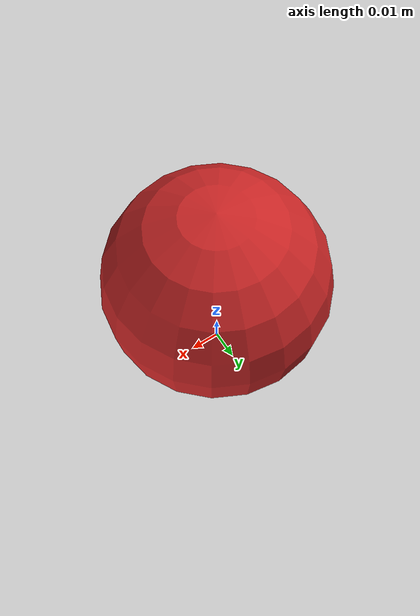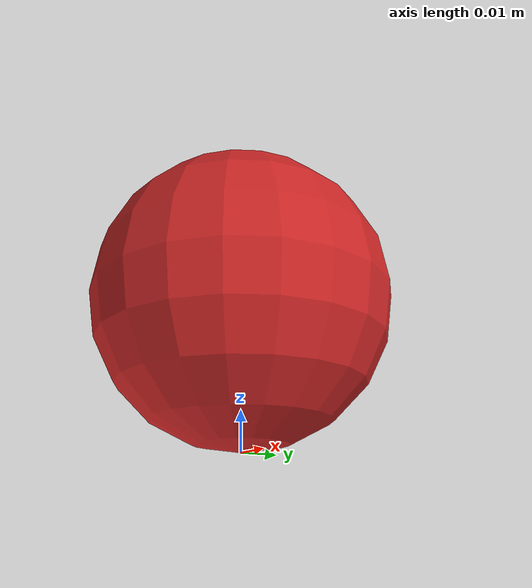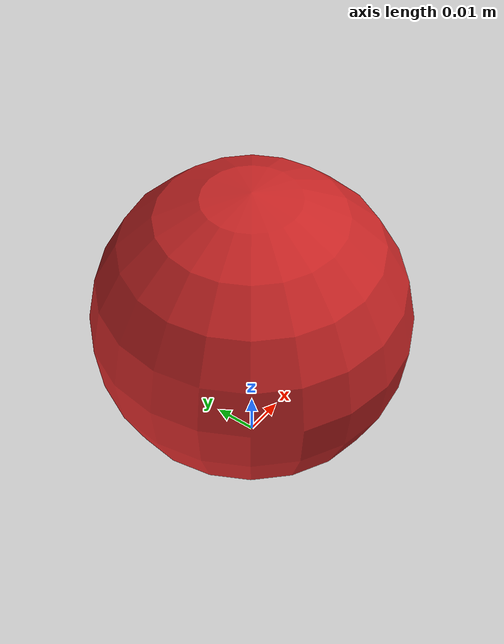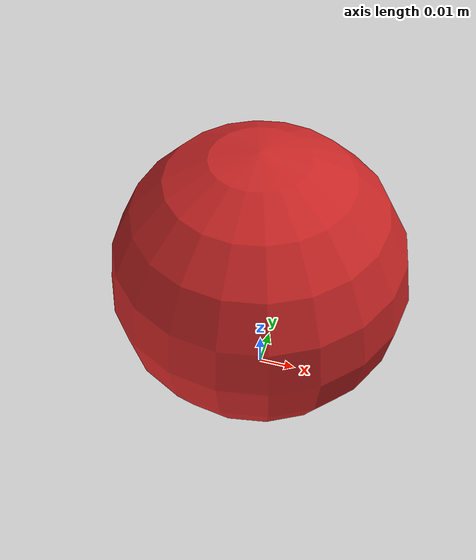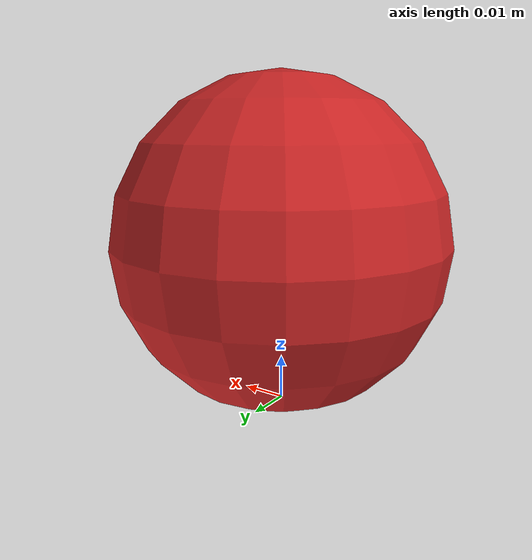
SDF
<?xml version='1.0'?>
<sdf version='1.6'>
  <model name='cricket_ball'>
    <link name='link'>
      <pose frame=''>0 0 0.0375 0 -0 0</pose>
      <inertial>
        <mass>0.1467</mass>
        <inertia>
          <ixx>8.252e-05</ixx>
          <ixy>0</ixy>
          <ixz>0</ixz>
          <iyy>8.252e-05</iyy>
          <iyz>0</iyz>
          <izz>8.252e-05</izz>
        </inertia>
        <pose frame=''>0 0 0 0 -0 0</pose>
      </inertial>
      <self_collide>0</self_collide>
      <kinematic>0</kinematic>
      <velocity_decay>
        <linear>0</linear>
        <angular>0.005</angular>
      </velocity_decay>
      <gravity>1</gravity>
      <visual name='visual'>
        <geometry>
          <sphere>
            <radius>0.0375</radius>
          </sphere>
        </geometry>
        <material>
          <script>
            <uri>file://media/materials/scripts/gazebo.material</uri>
            <name>Gazebo/Red</name>
          </script>
          <shader type='pixel'>
            <normal_map>__default__</normal_map>
          </shader>
          <ambient>1 0 0 1</ambient>
          <diffuse>1 0 0 1</diffuse>
          <specular>0.1 0.1 0.1 1</specular>
          <emissive>0 0 0 1</emissive>
        </material>
        <pose frame=''>0 0 0 0 -0 0</pose>
        <transparency>0</transparency>
        <cast_shadows>1</cast_shadows>
      </visual>
      <collision name='collision'>
        <laser_retro>0</laser_retro>
        <max_contacts>10</max_contacts>
        <pose frame=''>0 0 0 0 -0 0</pose>
        <geometry>
          <sphere>
            <radius>0.0375</radius>
          </sphere>
        </geometry>
        <surface>
          <friction>
            <ode>
              <mu>0</mu>
              <mu2>0</mu2>
              <fdir1>1 0 0</fdir1>
              <slip1>0</slip1>
              <slip2>0</slip2>
            </ode>
            <torsional>
              <coefficient>1</coefficient>
              <patch_radius>0</patch_radius>
              <surface_radius>0.01</surface_radius>
              <use_patch_radius>0</use_patch_radius>
              <ode>
                <slip>0</slip>
              </ode>
            </torsional>
          </friction>
          <bounce>
            <restitution_coefficient>0</restitution_coefficient>
            <threshold>1e+06</threshold>
          </bounce>
          <contact>
            <collide_without_contact>0</collide_without_contact>
            <collide_without_contact_bitmask>1</collide_without_contact_bitmask>
            <collide_bitmask>1</collide_bitmask>
            <ode>
              <soft_cfm>0</soft_cfm>
              <soft_erp>0.2</soft_erp>
              <kp>100000</kp>
              <kd>100</kd>
              <max_vel>100</max_vel>
              <min_depth>0.001</min_depth>
            </ode>
            <bullet>
              <split_impulse>1</split_impulse>
              <split_impulse_penetration_threshold>-0.01</split_impulse_penetration_threshold>
              <soft_cfm>0</soft_cfm>
              <soft_erp>0.2</soft_erp>
              <kp>100000</kp>
              <kd>100</kd>
            </bullet>
          </contact>
        </surface>
      </collision>
    </link>
    <static>0</static>
    <allow_auto_disable>0</allow_auto_disable>
  </model>
</sdf>
